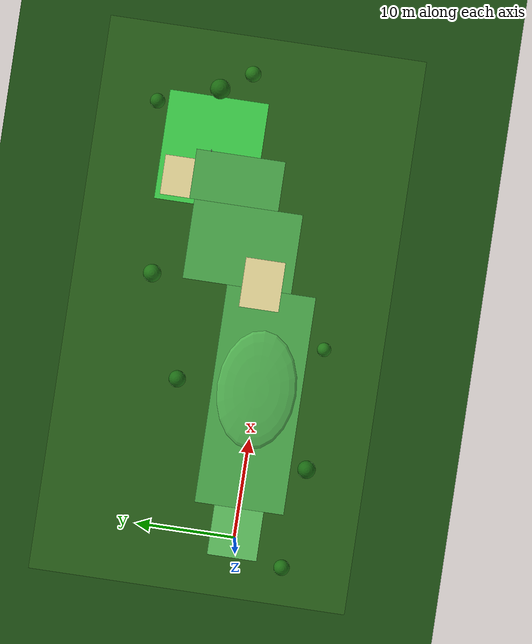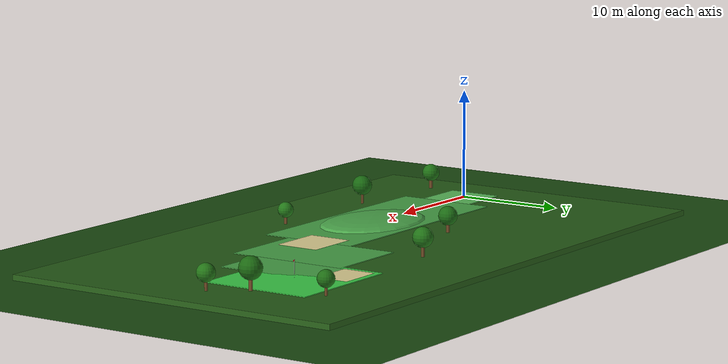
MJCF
<mujoco model="course2_gentle_dogleg">
  <option timestep="0.0005" gravity="0 0 -9.81" integrator="Euler">
    <flag contact="enable"/>
  </option>

  <default>
    <geom condim="3" friction="0.8 0.005 0.0001"/>
  </default>

  <worldbody>

    <!-- ============ ROUGH BASE ============ -->
    <geom name="rough_base" type="box" pos="22 4 -0.27" size="28 16 0.25"
          rgba="0.16 0.38 0.10 1" friction="0.8 0.02 0.0005"/>

    <!-- ============ TEE BOX ============ -->
    <geom name="tee_box" type="box" pos="0.5 0 -0.22" size="2.5 2.5 0.27"
          rgba="0.38 0.78 0.38 1" friction="0.4 0.005 0.0001"/>
    <geom name="tee_marker" type="cylinder" pos="0.05 0 0.06" size="0.05 0.005"
          rgba="0.95 0.25 0.25 1" contype="0" conaffinity="0"/>

    <!-- ============ FAIRWAY ============ -->
    <geom name="fairway1" type="box" pos="14 0 -0.22" size="11 4.5 0.27"
          rgba="0.30 0.68 0.30 1" friction="0.4 0.005 0.0001"/>
    <geom name="fairway2" type="box" pos="29 3.5 -0.22" size="4 5.5 0.27"
          rgba="0.30 0.68 0.30 1" friction="0.4 0.005 0.0001"/>
    <geom name="fairway_approach" type="box" pos="35.5 5 -0.22" size="2.5 4.5 0.27"
          rgba="0.30 0.68 0.30 1" friction="0.35 0.005 0.0001"/>

    <!-- ============ HILL ============ -->
    <geom name="hill" type="ellipsoid" pos="15 0 0.05" size="6 4 0.5"
          rgba="0.32 0.70 0.32 1" friction="0.45 0.005 0.0001"/>

    <!-- ============ GREEN ============ -->
    <geom name="green" type="box" pos="38 8 -0.22" size="5.5 5 0.27"
          rgba="0.25 0.85 0.30 1" friction="0.15 0.002 0.00005"/>

    <!-- ============ SAND BUNKERS ============ -->
    <geom name="sand1" type="box" pos="25.5 1 -0.22" size="2.5 2 0.28"
          rgba="0.94 0.88 0.62 1" friction="1.2 0.05 0.001"/>
    <geom name="sand2" type="box" pos="35 11 -0.22" size="2 1.5 0.28"
          rgba="0.94 0.88 0.62 1" friction="1.2 0.05 0.001"/>

    <!-- ============ FALLBACK GROUND ============ -->
    <geom name="ground" type="plane" size="100 100 0.1" pos="0 0 -0.52"
          rgba="0.12 0.32 0.08 1" friction="0.8 0.02 0.0005"/>

    <!-- ============ TREES ============ -->
    <body name="tree1" pos="-2 -5 0">
      <geom type="cylinder" pos="0 0 0.6" size="0.15 0.6" rgba="0.45 0.30 0.15 1" contype="0" conaffinity="0"/>
      <geom type="sphere" pos="0 0 1.5" size="0.8" rgba="0.12 0.45 0.08 1" contype="0" conaffinity="0"/>
    </body>
    <body name="tree2" pos="8 -6 0">
      <geom type="cylinder" pos="0 0 0.7" size="0.12 0.7" rgba="0.45 0.30 0.15 1" contype="0" conaffinity="0"/>
      <geom type="sphere" pos="0 0 1.7" size="0.9" rgba="0.10 0.42 0.07 1" contype="0" conaffinity="0"/>
    </body>
    <body name="tree3" pos="20 -6 0">
      <geom type="cylinder" pos="0 0 0.5" size="0.13 0.5" rgba="0.45 0.30 0.15 1" contype="0" conaffinity="0"/>
      <geom type="sphere" pos="0 0 1.3" size="0.7" rgba="0.14 0.48 0.10 1" contype="0" conaffinity="0"/>
    </body>
    <body name="tree4" pos="15 8 0">
      <geom type="cylinder" pos="0 0 0.6" size="0.14 0.6" rgba="0.45 0.30 0.15 1" contype="0" conaffinity="0"/>
      <geom type="sphere" pos="0 0 1.5" size="0.85" rgba="0.11 0.43 0.08 1" contype="0" conaffinity="0"/>
    </body>
    <body name="tree5" pos="25 12 0">
      <geom type="cylinder" pos="0 0 0.7" size="0.15 0.7" rgba="0.45 0.30 0.15 1" contype="0" conaffinity="0"/>
      <geom type="sphere" pos="0 0 1.7" size="0.9" rgba="0.13 0.46 0.09 1" contype="0" conaffinity="0"/>
    </body>
    <body name="tree6" pos="42 14 0">
      <geom type="cylinder" pos="0 0 0.55" size="0.12 0.55" rgba="0.45 0.30 0.15 1" contype="0" conaffinity="0"/>
      <geom type="sphere" pos="0 0 1.4" size="0.75" rgba="0.12 0.44 0.08 1" contype="0" conaffinity="0"/>
    </body>
    <body name="tree7" pos="44 8 0">
      <geom type="cylinder" pos="0 0 0.8" size="0.16 0.8" rgba="0.45 0.30 0.15 1" contype="0" conaffinity="0"/>
      <geom type="sphere" pos="0 0 1.9" size="1.0" rgba="0.11 0.42 0.07 1" contype="0" conaffinity="0"/>
    </body>
    <body name="tree8" pos="46 5 0">
      <geom type="cylinder" pos="0 0 0.6" size="0.13 0.6" rgba="0.45 0.30 0.15 1" contype="0" conaffinity="0"/>
      <geom type="sphere" pos="0 0 1.5" size="0.8" rgba="0.14 0.47 0.09 1" contype="0" conaffinity="0"/>
    </body>

    <!-- ============ HOLE ============ -->
    <body name="hole" pos="38.0 8.0 0.06">
      <geom name="hole_circle" type="cylinder" size="0.054 0.002"
            rgba="0.05 0.05 0.05 1" contype="0" conaffinity="0"/>
      <geom name="flag_pole" type="cylinder" pos="0 0 0.75" size="0.015 0.75"
            rgba="0.85 0.85 0.85 1" contype="0" conaffinity="0"/>
      <geom name="flag" type="box" pos="0.08 0 1.40" size="0.10 0.005 0.06"
            rgba="0.95 0.15 0.15 1" contype="0" conaffinity="0"/>
    </body>

    <!-- ============ LIGHTS ============ -->
    <light pos="20 0 20" dir="0 0.1 -1" diffuse="1.0 1.0 0.95" ambient="0.4 0.4 0.4"/>
    <light pos="38 8 15" dir="0 0 -1" diffuse="0.5 0.5 0.5"/>

    <!-- ============ GOLF BALL ============ -->
    <body name="ball" pos="0.05 0 0.0214">
      <freejoint name="ball_joint"/>
      <geom name="ball_geom" type="sphere" size="0.0214"
            rgba="1 1 1 1" mass="0.0459"
            friction="0.5 0.005 0.0001"/>
    </body>
  </worldbody>

  <sensor>
    <framepos name="ball_pos" objtype="body" objname="ball"/>
    <framelinvel name="ball_vel" objtype="body" objname="ball"/>
  </sensor>
</mujoco>
